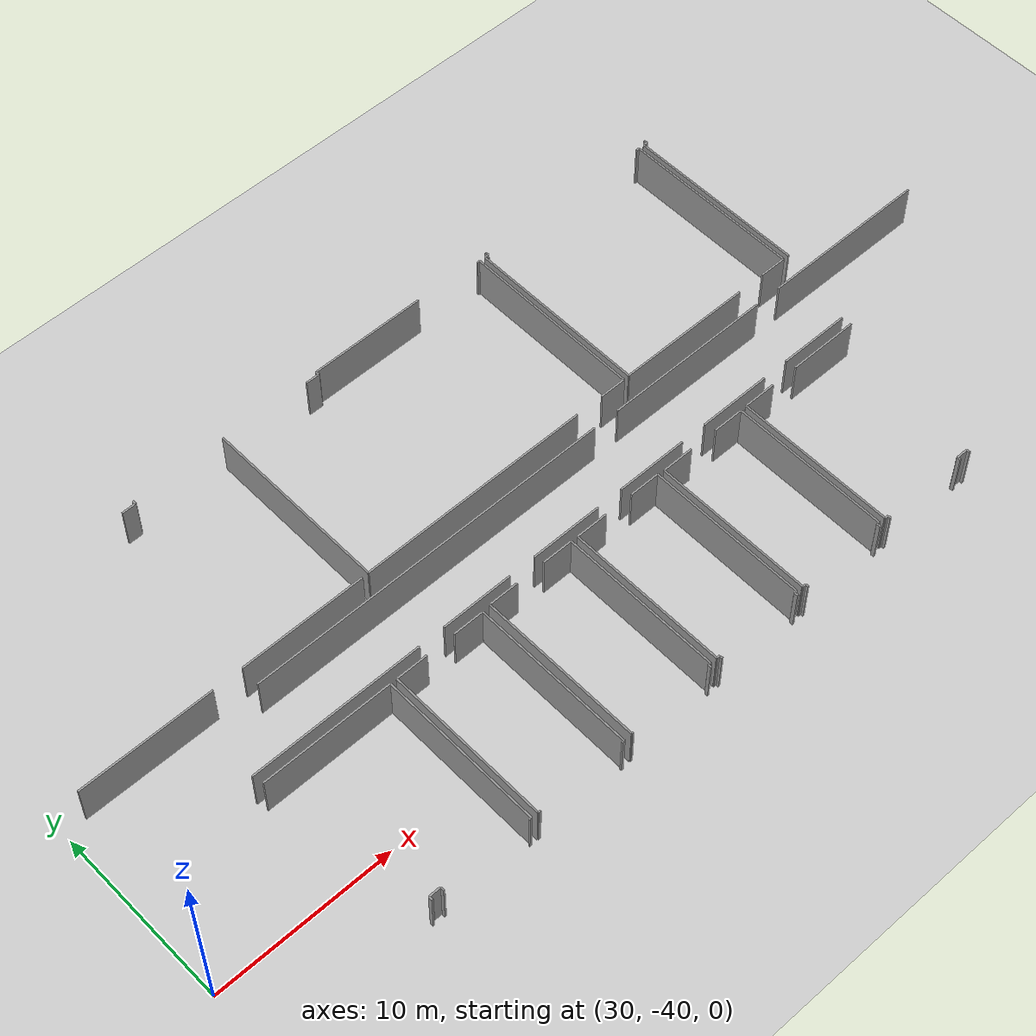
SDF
<sdf version="1.6">
 <world name="default">
  <model name="ground_plane">
   <static>1</static>
   <link name="link">
    <collision name="collision">
     <geometry><plane><normal>0 0 1</normal><size>100 100</size></plane></geometry>
     <surface><friction><ode><mu>100</mu><mu2>50</mu2></ode></friction></surface>
    </collision>
    <visual name="visual">
     <cast_shadows>0</cast_shadows>
     <geometry><plane><normal>0 0 1</normal><size>100 100</size></plane></geometry>
     <material>
      <script><uri>file://media/materials/scripts/gazebo.material</uri><name>Gazebo/Grey</name></script>
     </material>
    </visual>
   </link>
  </model>
  <model name="50015847">
   <static>1</static>
   <link name="Wall_1422">
    <collision name="Wall_1422_Collision">
     <geometry><box><size>7.35801088117 0.1 2.5</size></box></geometry>
     <pose>3.67900544059 0 1.25 0 0 0</pose>
    </collision>
    <visual name="Wall_1422_Visual">
     <pose>3.67900544059 0 1.25 0 0 0</pose>
     <geometry><box><size>7.35801088117 0.1 2.5</size></box></geometry>
     <material>
      <script><uri>file://media/materials/scripts/gazebo.material</uri><name>Gazebo/Grey</name></script>
      <ambient>1 1 1 1</ambient>
     </material>
    </visual>
    <pose>169.679920679 -78.6454466873 0 0 0 0.0</pose>
   </link>
   <link name="Wall_1423">
    <collision name="Wall_1423_Collision">
     <geometry><box><size>9.2019626786 0.1 2.5</size></box></geometry>
     <pose>4.6009813393 0 1.25 0 0 0</pose>
    </collision>
    <visual name="Wall_1423_Visual">
     <pose>4.6009813393 0 1.25 0 0 0</pose>
     <geometry><box><size>9.2019626786 0.1 2.5</size></box></geometry>
     <material>
      <script><uri>file://media/materials/scripts/gazebo.material</uri><name>Gazebo/Grey</name></script>
      <ambient>1 1 1 1</ambient>
     </material>
    </visual>
    <pose>177.03793156 -78.6454466873 0 0 0 -1.57079632679</pose>
   </link>
   <link name="Wall_1424">
    <collision name="Wall_1424_Collision">
     <geometry><box><size>0.140336604464 0.1 2.5</size></box></geometry>
     <pose>0.0701683022321 0 1.25 0 0 0</pose>
    </collision>
    <visual name="Wall_1424_Visual">
     <pose>0.0701683022321 0 1.25 0 0 0</pose>
     <geometry><box><size>0.140336604464 0.1 2.5</size></box></geometry>
     <material>
      <script><uri>file://media/materials/scripts/gazebo.material</uri><name>Gazebo/Grey</name></script>
      <ambient>1 1 1 1</ambient>
     </material>
    </visual>
    <pose>177.03793156 -87.8474093659 0 0 0 3.14159265359</pose>
   </link>
   <link name="Wall_1425">
    <collision name="Wall_1425_Collision">
     <geometry><box><size>0.22372502161 0.1 2.5</size></box></geometry>
     <pose>0.111862510805 0 1.25 0 0 0</pose>
    </collision>
    <visual name="Wall_1425_Visual">
     <pose>0.111862510805 0 1.25 0 0 0</pose>
     <geometry><box><size>0.22372502161 0.1 2.5</size></box></geometry>
     <material>
      <script><uri>file://media/materials/scripts/gazebo.material</uri><name>Gazebo/Grey</name></script>
      <ambient>1 1 1 1</ambient>
     </material>
    </visual>
    <pose>171.973610617 -87.8474093659 0 0 0 1.57079632679</pose>
   </link>
   <link name="Wall_1426">
    <collision name="Wall_1426_Collision">
     <geometry><box><size>0.655921086083 0.1 2.5</size></box></geometry>
     <pose>0.327960543042 0 1.25 0 0 0</pose>
    </collision>
    <visual name="Wall_1426_Visual">
     <pose>0.327960543042 0 1.25 0 0 0</pose>
     <geometry><box><size>0.655921086083 0.1 2.5</size></box></geometry>
     <material>
      <script><uri>file://media/materials/scripts/gazebo.material</uri><name>Gazebo/Grey</name></script>
      <ambient>1 1 1 1</ambient>
     </material>
    </visual>
    <pose>171.973610617 -87.6236843443 0 0 0 3.14159265359</pose>
   </link>
   <link name="Wall_1427">
    <collision name="Wall_1427_Collision">
     <geometry><box><size>0.207454110947 0.1 2.5</size></box></geometry>
     <pose>0.103727055474 0 1.25 0 0 0</pose>
    </collision>
    <visual name="Wall_1427_Visual">
     <pose>0.103727055474 0 1.25 0 0 0</pose>
     <geometry><box><size>0.207454110947 0.1 2.5</size></box></geometry>
     <material>
      <script><uri>file://media/materials/scripts/gazebo.material</uri><name>Gazebo/Grey</name></script>
      <ambient>1 1 1 1</ambient>
     </material>
    </visual>
    <pose>171.317689531 -87.6236843443 0 0 0 -1.57079632679</pose>
   </link>
   <link name="Wall_1431">
    <collision name="Wall_1431_Collision">
     <geometry><box><size>9.18848833071 0.1 2.5</size></box></geometry>
     <pose>4.59424416535 0 1.25 0 0 0</pose>
    </collision>
    <visual name="Wall_1431_Visual">
     <pose>4.59424416535 0 1.25 0 0 0</pose>
     <geometry><box><size>9.18848833071 0.1 2.5</size></box></geometry>
     <material>
      <script><uri>file://media/materials/scripts/gazebo.material</uri><name>Gazebo/Grey</name></script>
      <ambient>1 1 1 1</ambient>
     </material>
    </visual>
    <pose>177.416230233 -87.8420704734 0 0 0 1.57079632679</pose>
   </link>
   <link name="Wall_1432">
    <collision name="Wall_1432_Collision">
     <geometry><box><size>1.80022372502 0.1 2.5</size></box></geometry>
     <pose>0.900111862511 0 1.25 0 0 0</pose>
    </collision>
    <visual name="Wall_1432_Visual">
     <pose>0.900111862511 0 1.25 0 0 0</pose>
     <geometry><box><size>1.80022372502 0.1 2.5</size></box></geometry>
     <material>
      <script><uri>file://media/materials/scripts/gazebo.material</uri><name>Gazebo/Grey</name></script>
      <ambient>1 1 1 1</ambient>
     </material>
    </visual>
    <pose>177.416230233 -78.6535821427 0 0 0 0.0</pose>
   </link>
   <link name="Wall_1433">
    <collision name="Wall_1433_Collision">
     <geometry><box><size>1.75141099303 0.1 2.5</size></box></geometry>
     <pose>0.875705496517 0 1.25 0 0 0</pose>
    </collision>
    <visual name="Wall_1433_Visual">
     <pose>0.875705496517 0 1.25 0 0 0</pose>
     <geometry><box><size>1.75141099303 0.1 2.5</size></box></geometry>
     <material>
      <script><uri>file://media/materials/scripts/gazebo.material</uri><name>Gazebo/Grey</name></script>
      <ambient>1 1 1 1</ambient>
     </material>
    </visual>
    <pose>180.864900595 -78.6535821427 0 0 0 0.0</pose>
   </link>
   <link name="Wall_1434">
    <collision name="Wall_1434_Collision">
     <geometry><box><size>9.19891188285 0.1 2.5</size></box></geometry>
     <pose>4.59945594142 0 1.25 0 0 0</pose>
    </collision>
    <visual name="Wall_1434_Visual">
     <pose>4.59945594142 0 1.25 0 0 0</pose>
     <geometry><box><size>9.19891188285 0.1 2.5</size></box></geometry>
     <material>
      <script><uri>file://media/materials/scripts/gazebo.material</uri><name>Gazebo/Grey</name></script>
      <ambient>1 1 1 1</ambient>
     </material>
    </visual>
    <pose>182.616311588 -78.6535821427 0 0 0 -1.57079632679</pose>
   </link>
   <link name="Wall_1435">
    <collision name="Wall_1435_Collision">
     <geometry><box><size>0.140845070423 0.1 2.5</size></box></geometry>
     <pose>0.0704225352113 0 1.25 0 0 0</pose>
    </collision>
    <visual name="Wall_1435_Visual">
     <pose>0.0704225352113 0 1.25 0 0 0</pose>
     <geometry><box><size>0.140845070423 0.1 2.5</size></box></geometry>
     <material>
      <script><uri>file://media/materials/scripts/gazebo.material</uri><name>Gazebo/Grey</name></script>
      <ambient>1 1 1 1</ambient>
     </material>
    </visual>
    <pose>182.616311588 -87.8524940255 0 0 0 3.14159265359</pose>
   </link>
   <link name="Wall_1436">
    <collision name="Wall_1436_Collision">
     <geometry><box><size>0.146301526098 0.1 2.5</size></box></geometry>
     <pose>0.0731507630488 0 1.25 0 0 0</pose>
    </collision>
    <visual name="Wall_1436_Visual">
     <pose>0.0731507630488 0 1.25 0 0 0</pose>
     <geometry><box><size>0.146301526098 0.1 2.5</size></box></geometry>
     <material>
      <script><uri>file://media/materials/scripts/gazebo.material</uri><name>Gazebo/Grey</name></script>
      <ambient>1 1 1 1</ambient>
     </material>
    </visual>
    <pose>177.562159963 -87.8524940255 0 0 0 3.0702851888</pose>
   </link>
   <link name="Wall_1437">
    <collision name="Wall_1437_Collision">
     <geometry><box><size>9.23679259674 0.1 2.5</size></box></geometry>
     <pose>4.61839629837 0 1.25 0 0 0</pose>
    </collision>
    <visual name="Wall_1437_Visual">
     <pose>4.61839629837 0 1.25 0 0 0</pose>
     <geometry><box><size>9.23679259674 0.1 2.5</size></box></geometry>
     <material>
      <script><uri>file://media/materials/scripts/gazebo.material</uri><name>Gazebo/Grey</name></script>
      <ambient>1 1 1 1</ambient>
     </material>
    </visual>
    <pose>183.107743937 -87.8212233691 0 0 0 1.57079632679</pose>
   </link>
   <link name="Wall_1438">
    <collision name="Wall_1438_Collision">
     <geometry><box><size>1.71429297809 0.1 2.5</size></box></geometry>
     <pose>0.857146489043 0 1.25 0 0 0</pose>
    </collision>
    <visual name="Wall_1438_Visual">
     <pose>0.857146489043 0 1.25 0 0 0</pose>
     <geometry><box><size>1.71429297809 0.1 2.5</size></box></geometry>
     <material>
      <script><uri>file://media/materials/scripts/gazebo.material</uri><name>Gazebo/Grey</name></script>
      <ambient>1 1 1 1</ambient>
     </material>
    </visual>
    <pose>183.107743937 -78.5844307724 0 0 0 0.0</pose>
   </link>
   <link name="Wall_1439">
    <collision name="Wall_1439_Collision">
     <geometry><box><size>1.75344485687 0.1 2.5</size></box></geometry>
     <pose>0.876722428433 0 1.25 0 0 0</pose>
    </collision>
    <visual name="Wall_1439_Visual">
     <pose>0.876722428433 0 1.25 0 0 0</pose>
     <geometry><box><size>1.75344485687 0.1 2.5</size></box></geometry>
     <material>
      <script><uri>file://media/materials/scripts/gazebo.material</uri><name>Gazebo/Grey</name></script>
      <ambient>1 1 1 1</ambient>
     </material>
    </visual>
    <pose>186.485991763 -78.5844307724 0 0 0 0.0</pose>
   </link>
   <link name="Wall_1440">
    <collision name="Wall_1440_Collision">
     <geometry><box><size>9.05552448264 0.1 2.5</size></box></geometry>
     <pose>4.52776224132 0 1.25 0 0 0</pose>
    </collision>
    <visual name="Wall_1440_Visual">
     <pose>4.52776224132 0 1.25 0 0 0</pose>
     <geometry><box><size>9.05552448264 0.1 2.5</size></box></geometry>
     <material>
      <script><uri>file://media/materials/scripts/gazebo.material</uri><name>Gazebo/Grey</name></script>
      <ambient>1 1 1 1</ambient>
     </material>
    </visual>
    <pose>188.23943662 -78.5844307724 0 0 0 -1.57079632679</pose>
   </link>
   <link name="Wall_1441">
    <collision name="Wall_1441_Collision">
     <geometry><box><size>0.134489245945 0.1 2.5</size></box></geometry>
     <pose>0.0672446229725 0 1.25 0 0 0</pose>
    </collision>
    <visual name="Wall_1441_Visual">
     <pose>0.0672446229725 0 1.25 0 0 0</pose>
     <geometry><box><size>0.134489245945 0.1 2.5</size></box></geometry>
     <material>
      <script><uri>file://media/materials/scripts/gazebo.material</uri><name>Gazebo/Grey</name></script>
      <ambient>1 1 1 1</ambient>
     </material>
    </visual>
    <pose>188.23943662 -87.639955255 0 0 0 3.14159265359</pose>
   </link>
   <link name="Wall_1442">
    <collision name="Wall_1442_Collision">
     <geometry><box><size>0.174912289622 0.1 2.5</size></box></geometry>
     <pose>0.0874561448111 0 1.25 0 0 0</pose>
    </collision>
    <visual name="Wall_1442_Visual">
     <pose>0.0874561448111 0 1.25 0 0 0</pose>
     <geometry><box><size>0.174912289622 0.1 2.5</size></box></geometry>
     <material>
      <script><uri>file://media/materials/scripts/gazebo.material</uri><name>Gazebo/Grey</name></script>
      <ambient>1 1 1 1</ambient>
     </material>
    </visual>
    <pose>188.104947374 -87.639955255 0 0 0 -1.57079632679</pose>
   </link>
   <link name="Wall_1443">
    <collision name="Wall_1443_Collision">
     <geometry><box><size>0.109250984094 0.1 2.5</size></box></geometry>
     <pose>0.054625492047 0 1.25 0 0 0</pose>
    </collision>
    <visual name="Wall_1443_Visual">
     <pose>0.054625492047 0 1.25 0 0 0</pose>
     <geometry><box><size>0.109250984094 0.1 2.5</size></box></geometry>
     <material>
      <script><uri>file://media/materials/scripts/gazebo.material</uri><name>Gazebo/Grey</name></script>
      <ambient>1 1 1 1</ambient>
     </material>
    </visual>
    <pose>183.216809885 -87.8148675446 0 0 0 -3.08338342825</pose>
   </link>
   <link name="Wall_1444">
    <collision name="Wall_1444_Collision">
     <geometry><box><size>9.0255249911 0.1 2.5</size></box></geometry>
     <pose>4.51276249555 0 1.25 0 0 0</pose>
    </collision>
    <visual name="Wall_1444_Visual">
     <pose>4.51276249555 0 1.25 0 0 0</pose>
     <geometry><box><size>9.0255249911 0.1 2.5</size></box></geometry>
     <material>
      <script><uri>file://media/materials/scripts/gazebo.material</uri><name>Gazebo/Grey</name></script>
      <ambient>1 1 1 1</ambient>
     </material>
    </visual>
    <pose>188.631718106 -87.6328367316 0 0 0 1.57079632679</pose>
   </link>
   <link name="Wall_1445">
    <collision name="Wall_1445_Collision">
     <geometry><box><size>1.8345451772 0.1 2.5</size></box></geometry>
     <pose>0.9172725886 0 1.25 0 0 0</pose>
    </collision>
    <visual name="Wall_1445_Visual">
     <pose>0.9172725886 0 1.25 0 0 0</pose>
     <geometry><box><size>1.8345451772 0.1 2.5</size></box></geometry>
     <material>
      <script><uri>file://media/materials/scripts/gazebo.material</uri><name>Gazebo/Grey</name></script>
      <ambient>1 1 1 1</ambient>
     </material>
    </visual>
    <pose>188.631718106 -78.6073117405 0 0 0 0.0</pose>
   </link>
   <link name="Wall_1446">
    <collision name="Wall_1446_Collision">
     <geometry><box><size>1.74861443026 0.1 2.5</size></box></geometry>
     <pose>0.874307215132 0 1.25 0 0 0</pose>
    </collision>
    <visual name="Wall_1446_Visual">
     <pose>0.874307215132 0 1.25 0 0 0</pose>
     <geometry><box><size>1.74861443026 0.1 2.5</size></box></geometry>
     <material>
      <script><uri>file://media/materials/scripts/gazebo.material</uri><name>Gazebo/Grey</name></script>
      <ambient>1 1 1 1</ambient>
     </material>
    </visual>
    <pose>192.115981085 -78.6073117405 0 0 0 0.0</pose>
   </link>
   <link name="Wall_1447">
    <collision name="Wall_1447_Collision">
     <geometry><box><size>9.01713530279 0.1 2.5</size></box></geometry>
     <pose>4.5085676514 0 1.25 0 0 0</pose>
    </collision>
    <visual name="Wall_1447_Visual">
     <pose>4.5085676514 0 1.25 0 0 0</pose>
     <geometry><box><size>9.01713530279 0.1 2.5</size></box></geometry>
     <material>
      <script><uri>file://media/materials/scripts/gazebo.material</uri><name>Gazebo/Grey</name></script>
      <ambient>1 1 1 1</ambient>
     </material>
    </visual>
    <pose>193.864595515 -78.6073117405 0 0 0 -1.57079632679</pose>
   </link>
   <link name="Wall_1448">
    <collision name="Wall_1448_Collision">
     <geometry><box><size>0.136777342757 0.1 2.5</size></box></geometry>
     <pose>0.0683886713784 0 1.25 0 0 0</pose>
    </collision>
    <visual name="Wall_1448_Visual">
     <pose>0.0683886713784 0 1.25 0 0 0</pose>
     <geometry><box><size>0.136777342757 0.1 2.5</size></box></geometry>
     <material>
      <script><uri>file://media/materials/scripts/gazebo.material</uri><name>Gazebo/Grey</name></script>
      <ambient>1 1 1 1</ambient>
     </material>
    </visual>
    <pose>193.864595515 -87.6244470433 0 0 0 3.14159265359</pose>
   </link>
   <link name="Wall_1449">
    <collision name="Wall_1449_Collision">
     <geometry><box><size>0.204403315198 0.1 2.5</size></box></geometry>
     <pose>0.102201657599 0 1.25 0 0 0</pose>
    </collision>
    <visual name="Wall_1449_Visual">
     <pose>0.102201657599 0 1.25 0 0 0</pose>
     <geometry><box><size>0.204403315198 0.1 2.5</size></box></geometry>
     <material>
      <script><uri>file://media/materials/scripts/gazebo.material</uri><name>Gazebo/Grey</name></script>
      <ambient>1 1 1 1</ambient>
     </material>
    </visual>
    <pose>193.727818173 -87.6244470433 0 0 0 -1.57079632679</pose>
   </link>
   <link name="Wall_1450">
    <collision name="Wall_1450_Collision">
     <geometry><box><size>0.17542075558 0.1 2.5</size></box></geometry>
     <pose>0.0877103777902 0 1.25 0 0 0</pose>
    </collision>
    <visual name="Wall_1450_Visual">
     <pose>0.0877103777902 0 1.25 0 0 0</pose>
     <geometry><box><size>0.17542075558 0.1 2.5</size></box></geometry>
     <material>
      <script><uri>file://media/materials/scripts/gazebo.material</uri><name>Gazebo/Grey</name></script>
      <ambient>1 1 1 1</ambient>
     </material>
    </visual>
    <pose>188.806630396 -87.8288503585 0 0 0 1.57079632679</pose>
   </link>
   <link name="Wall_1451">
    <collision name="Wall_1451_Collision">
     <geometry><box><size>0.176120343543 0.1 2.5</size></box></geometry>
     <pose>0.0880601717713 0 1.25 0 0 0</pose>
    </collision>
    <visual name="Wall_1451_Visual">
     <pose>0.0880601717713 0 1.25 0 0 0</pose>
     <geometry><box><size>0.176120343543 0.1 2.5</size></box></geometry>
     <material>
      <script><uri>file://media/materials/scripts/gazebo.material</uri><name>Gazebo/Grey</name></script>
      <ambient>1 1 1 1</ambient>
     </material>
    </visual>
    <pose>188.806630396 -87.6534296029 0 0 0 3.02439957777</pose>
   </link>
   <link name="Wall_1452">
    <collision name="Wall_1452_Collision">
     <geometry><box><size>8.96857680378 0.1 2.5</size></box></geometry>
     <pose>4.48428840189 0 1.25 0 0 0</pose>
    </collision>
    <visual name="Wall_1452_Visual">
     <pose>4.48428840189 0 1.25 0 0 0</pose>
     <geometry><box><size>8.96857680378 0.1 2.5</size></box></geometry>
     <material>
      <script><uri>file://media/materials/scripts/gazebo.material</uri><name>Gazebo/Grey</name></script>
      <ambient>1 1 1 1</ambient>
     </material>
    </visual>
    <pose>194.244419586 -87.6333451975 0 0 0 1.57079632679</pose>
   </link>
   <link name="Wall_1453">
    <collision name="Wall_1453_Collision">
     <geometry><box><size>1.8065795495 0.1 2.5</size></box></geometry>
     <pose>0.90328977475 0 1.25 0 0 0</pose>
    </collision>
    <visual name="Wall_1453_Visual">
     <pose>0.90328977475 0 1.25 0 0 0</pose>
     <geometry><box><size>1.8065795495 0.1 2.5</size></box></geometry>
     <material>
      <script><uri>file://media/materials/scripts/gazebo.material</uri><name>Gazebo/Grey</name></script>
      <ambient>1 1 1 1</ambient>
     </material>
    </visual>
    <pose>194.244419586 -78.6647683938 0 0 0 0.0</pose>
   </link>
   <link name="Wall_1454">
    <collision name="Wall_1454_Collision">
     <geometry><box><size>1.75624141964 0.1 2.5</size></box></geometry>
     <pose>0.878120709818 0 1.25 0 0 0</pose>
    </collision>
    <visual name="Wall_1454_Visual">
     <pose>0.878120709818 0 1.25 0 0 0</pose>
     <geometry><box><size>1.75624141964 0.1 2.5</size></box></geometry>
     <material>
      <script><uri>file://media/materials/scripts/gazebo.material</uri><name>Gazebo/Grey</name></script>
      <ambient>1 1 1 1</ambient>
     </material>
    </visual>
    <pose>197.698683073 -78.6647683938 0 0 0 0.0</pose>
   </link>
   <link name="Wall_1455">
    <collision name="Wall_1455_Collision">
     <geometry><box><size>8.95001779631 0.1 2.5</size></box></geometry>
     <pose>4.47500889815 0 1.25 0 0 0</pose>
    </collision>
    <visual name="Wall_1455_Visual">
     <pose>4.47500889815 0 1.25 0 0 0</pose>
     <geometry><box><size>8.95001779631 0.1 2.5</size></box></geometry>
     <material>
      <script><uri>file://media/materials/scripts/gazebo.material</uri><name>Gazebo/Grey</name></script>
      <ambient>1 1 1 1</ambient>
     </material>
    </visual>
    <pose>199.454924493 -78.6647683938 0 0 0 -1.57079632679</pose>
   </link>
   <link name="Wall_1456">
    <collision name="Wall_1456_Collision">
     <geometry><box><size>0.141353536381 0.1 2.5</size></box></geometry>
     <pose>0.0706767681904 0 1.25 0 0 0</pose>
    </collision>
    <visual name="Wall_1456_Visual">
     <pose>0.0706767681904 0 1.25 0 0 0</pose>
     <geometry><box><size>0.141353536381 0.1 2.5</size></box></geometry>
     <material>
      <script><uri>file://media/materials/scripts/gazebo.material</uri><name>Gazebo/Grey</name></script>
      <ambient>1 1 1 1</ambient>
     </material>
    </visual>
    <pose>199.454924493 -87.6147861901 0 0 0 3.14159265359</pose>
   </link>
   <link name="Wall_1457">
    <collision name="Wall_1457_Collision">
     <geometry><box><size>0.207454110947 0.1 2.5</size></box></geometry>
     <pose>0.103727055474 0 1.25 0 0 0</pose>
    </collision>
    <visual name="Wall_1457_Visual">
     <pose>0.103727055474 0 1.25 0 0 0</pose>
     <geometry><box><size>0.207454110947 0.1 2.5</size></box></geometry>
     <material>
      <script><uri>file://media/materials/scripts/gazebo.material</uri><name>Gazebo/Grey</name></script>
      <ambient>1 1 1 1</ambient>
     </material>
    </visual>
    <pose>199.313570956 -87.6147861901 0 0 0 -1.57079632679</pose>
   </link>
   <link name="Wall_1458">
    <collision name="Wall_1458_Collision">
     <geometry><box><size>0.171353027915 0.1 2.5</size></box></geometry>
     <pose>0.0856765139574 0 1.25 0 0 0</pose>
    </collision>
    <visual name="Wall_1458_Visual">
     <pose>0.0856765139574 0 1.25 0 0 0</pose>
     <geometry><box><size>0.171353027915 0.1 2.5</size></box></geometry>
     <material>
      <script><uri>file://media/materials/scripts/gazebo.material</uri><name>Gazebo/Grey</name></script>
      <ambient>1 1 1 1</ambient>
     </material>
    </visual>
    <pose>194.427467331 -87.822240301 0 0 0 1.57079632679</pose>
   </link>
   <link name="Wall_1459">
    <collision name="Wall_1459_Collision">
     <geometry><box><size>0.196776325825 0.1 2.5</size></box></geometry>
     <pose>0.0983881629125 0 1.25 0 0 0</pose>
    </collision>
    <visual name="Wall_1459_Visual">
     <pose>0.0983881629125 0 1.25 0 0 0</pose>
     <geometry><box><size>0.196776325825 0.1 2.5</size></box></geometry>
     <material>
      <script><uri>file://media/materials/scripts/gazebo.material</uri><name>Gazebo/Grey</name></script>
      <ambient>1 1 1 1</ambient>
     </material>
    </visual>
    <pose>194.427467331 -87.6508872731 0 0 0 3.14159265359</pose>
   </link>
   <link name="Wall_1460">
    <collision name="Wall_1460_Collision">
     <geometry><box><size>0.022275510042 0.1 2.5</size></box></geometry>
     <pose>0.011137755021 0 1.25 0 0 0</pose>
    </collision>
    <visual name="Wall_1460_Visual">
     <pose>0.011137755021 0 1.25 0 0 0</pose>
     <geometry><box><size>0.022275510042 0.1 2.5</size></box></geometry>
     <material>
      <script><uri>file://media/materials/scripts/gazebo.material</uri><name>Gazebo/Grey</name></script>
      <ambient>1 1 1 1</ambient>
     </material>
    </visual>
    <pose>194.230691005 -87.6508872731 0 0 0 0.906750163967</pose>
   </link>
   <link name="Wall_1461">
    <collision name="Wall_1461_Collision">
     <geometry><box><size>8.97671225911 0.1 2.5</size></box></geometry>
     <pose>4.48835612956 0 1.25 0 0 0</pose>
    </collision>
    <visual name="Wall_1461_Visual">
     <pose>4.48835612956 0 1.25 0 0 0</pose>
     <geometry><box><size>8.97671225911 0.1 2.5</size></box></geometry>
     <material>
      <script><uri>file://media/materials/scripts/gazebo.material</uri><name>Gazebo/Grey</name></script>
      <ambient>1 1 1 1</ambient>
     </material>
    </visual>
    <pose>199.835002797 -87.6221589465 0 0 0 1.57079632679</pose>
   </link>
   <link name="Wall_1462">
    <collision name="Wall_1462_Collision">
     <geometry><box><size>1.87090049321 0.1 2.5</size></box></geometry>
     <pose>0.935450246606 0 1.25 0 0 0</pose>
    </collision>
    <visual name="Wall_1462_Visual">
     <pose>0.935450246606 0 1.25 0 0 0</pose>
     <geometry><box><size>1.87090049321 0.1 2.5</size></box></geometry>
     <material>
      <script><uri>file://media/materials/scripts/gazebo.material</uri><name>Gazebo/Grey</name></script>
      <ambient>1 1 1 1</ambient>
     </material>
    </visual>
    <pose>199.835002797 -78.6454466873 0 0 0 0.0</pose>
   </link>
   <link name="Wall_1463">
    <collision name="Wall_1463_Collision">
     <geometry><box><size>4.00137285809 0.1 2.5</size></box></geometry>
     <pose>2.00068642904 0 1.25 0 0 0</pose>
    </collision>
    <visual name="Wall_1463_Visual">
     <pose>2.00068642904 0 1.25 0 0 0</pose>
     <geometry><box><size>4.00137285809 0.1 2.5</size></box></geometry>
     <material>
      <script><uri>file://media/materials/scripts/gazebo.material</uri><name>Gazebo/Grey</name></script>
      <ambient>1 1 1 1</ambient>
     </material>
    </visual>
    <pose>203.277063101 -78.6454466873 0 0 0 0.0</pose>
   </link>
   <link name="Wall_1468">
    <collision name="Wall_1468_Collision">
     <geometry><box><size>0.204403315198 0.1 2.5</size></box></geometry>
     <pose>0.102201657599 0 1.25 0 0 0</pose>
    </collision>
    <visual name="Wall_1468_Visual">
     <pose>0.102201657599 0 1.25 0 0 0</pose>
     <geometry><box><size>0.204403315198 0.1 2.5</size></box></geometry>
     <material>
      <script><uri>file://media/materials/scripts/gazebo.material</uri><name>Gazebo/Grey</name></script>
      <ambient>1 1 1 1</ambient>
     </material>
    </visual>
    <pose>205.606854121 -87.8369858138 0 0 0 1.57079632679</pose>
   </link>
   <link name="Wall_1469">
    <collision name="Wall_1469_Collision">
     <geometry><box><size>0.668632735038 0.1 2.5</size></box></geometry>
     <pose>0.334316367519 0 1.25 0 0 0</pose>
    </collision>
    <visual name="Wall_1469_Visual">
     <pose>0.334316367519 0 1.25 0 0 0</pose>
     <geometry><box><size>0.668632735038 0.1 2.5</size></box></geometry>
     <material>
      <script><uri>file://media/materials/scripts/gazebo.material</uri><name>Gazebo/Grey</name></script>
      <ambient>1 1 1 1</ambient>
     </material>
    </visual>
    <pose>205.606854121 -87.6325824986 0 0 0 3.14159265359</pose>
   </link>
   <link name="Wall_1470">
    <collision name="Wall_1470_Collision">
     <geometry><box><size>0.193725530076 0.1 2.5</size></box></geometry>
     <pose>0.0968627650379 0 1.25 0 0 0</pose>
    </collision>
    <visual name="Wall_1470_Visual">
     <pose>0.0968627650379 0 1.25 0 0 0</pose>
     <geometry><box><size>0.193725530076 0.1 2.5</size></box></geometry>
     <material>
      <script><uri>file://media/materials/scripts/gazebo.material</uri><name>Gazebo/Grey</name></script>
      <ambient>1 1 1 1</ambient>
     </material>
    </visual>
    <pose>204.938221386 -87.6325824986 0 0 0 -1.57079632679</pose>
   </link>
   <link name="Wall_1471">
    <collision name="Wall_1471_Collision">
     <geometry><box><size>0.180759648142 0.1 2.5</size></box></geometry>
     <pose>0.0903798240708 0 1.25 0 0 0</pose>
    </collision>
    <visual name="Wall_1471_Visual">
     <pose>0.0903798240708 0 1.25 0 0 0</pose>
     <geometry><box><size>0.180759648142 0.1 2.5</size></box></geometry>
     <material>
      <script><uri>file://media/materials/scripts/gazebo.material</uri><name>Gazebo/Grey</name></script>
      <ambient>1 1 1 1</ambient>
     </material>
    </visual>
    <pose>200.025169065 -87.8263080287 0 0 0 1.57079632679</pose>
   </link>
   <link name="Wall_1472">
    <collision name="Wall_1472_Collision">
     <geometry><box><size>0.192708598159 0.1 2.5</size></box></geometry>
     <pose>0.0963542990797 0 1.25 0 0 0</pose>
    </collision>
    <visual name="Wall_1472_Visual">
     <pose>0.0963542990797 0 1.25 0 0 0</pose>
     <geometry><box><size>0.192708598159 0.1 2.5</size></box></geometry>
     <material>
      <script><uri>file://media/materials/scripts/gazebo.material</uri><name>Gazebo/Grey</name></script>
      <ambient>1 1 1 1</ambient>
     </material>
    </visual>
    <pose>200.025169065 -87.6455483805 0 0 0 3.14159265359</pose>
   </link>
   <link name="Wall_1473">
    <collision name="Wall_1473_Collision">
     <geometry><box><size>0.0235271984568 0.1 2.5</size></box></geometry>
     <pose>0.0117635992284 0 1.25 0 0 0</pose>
    </collision>
    <visual name="Wall_1473_Visual">
     <pose>0.0117635992284 0 1.25 0 0 0</pose>
     <geometry><box><size>0.0235271984568 0.1 2.5</size></box></geometry>
     <material>
      <script><uri>file://media/materials/scripts/gazebo.material</uri><name>Gazebo/Grey</name></script>
      <ambient>1 1 1 1</ambient>
     </material>
    </visual>
    <pose>199.832460467 -87.6455483805 0 0 0 1.46252573593</pose>
   </link>
   <link name="Wall_1541">
    <collision name="Wall_1541_Collision">
     <geometry><box><size>10.3536380739 0.1 2.5</size></box></geometry>
     <pose>5.17681903697 0 1.25 0 0 0</pose>
    </collision>
    <visual name="Wall_1541_Visual">
     <pose>5.17681903697 0 1.25 0 0 0</pose>
     <geometry><box><size>10.3536380739 0.1 2.5</size></box></geometry>
     <material>
      <script><uri>file://media/materials/scripts/gazebo.material</uri><name>Gazebo/Grey</name></script>
      <ambient>1 1 1 1</ambient>
     </material>
    </visual>
    <pose>208.234097727 -73.491381502 0 0 0 1.57079632679</pose>
   </link>
   <link name="Wall_1542">
    <collision name="Wall_1542_Collision">
     <geometry><box><size>0.22931814715 0.1 2.5</size></box></geometry>
     <pose>0.114659073575 0 1.25 0 0 0</pose>
    </collision>
    <visual name="Wall_1542_Visual">
     <pose>0.114659073575 0 1.25 0 0 0</pose>
     <geometry><box><size>0.22931814715 0.1 2.5</size></box></geometry>
     <material>
      <script><uri>file://media/materials/scripts/gazebo.material</uri><name>Gazebo/Grey</name></script>
      <ambient>1 1 1 1</ambient>
     </material>
    </visual>
    <pose>208.234097727 -63.1377434281 0 0 0 0.0</pose>
   </link>
   <link name="Wall_1543">
    <collision name="Wall_1543_Collision">
     <geometry><box><size>0.219911526923 0.1 2.5</size></box></geometry>
     <pose>0.109955763462 0 1.25 0 0 0</pose>
    </collision>
    <visual name="Wall_1543_Visual">
     <pose>0.109955763462 0 1.25 0 0 0</pose>
     <geometry><box><size>0.219911526923 0.1 2.5</size></box></geometry>
     <material>
      <script><uri>file://media/materials/scripts/gazebo.material</uri><name>Gazebo/Grey</name></script>
      <ambient>1 1 1 1</ambient>
     </material>
    </visual>
    <pose>208.463415874 -63.1377434281 0 0 0 1.57079632679</pose>
   </link>
   <link name="Wall_1551">
    <collision name="Wall_1551_Collision">
     <geometry><box><size>10.5677022423 0.1 2.5</size></box></geometry>
     <pose>5.28385112117 0 1.25 0 0 0</pose>
    </collision>
    <visual name="Wall_1551_Visual">
     <pose>5.28385112117 0 1.25 0 0 0</pose>
     <geometry><box><size>10.5677022423 0.1 2.5</size></box></geometry>
     <material>
      <script><uri>file://media/materials/scripts/gazebo.material</uri><name>Gazebo/Grey</name></script>
      <ambient>1 1 1 1</ambient>
     </material>
    </visual>
    <pose>180.218131896 -73.4997711903 0 0 0 1.57079632679</pose>
   </link>
   <link name="Wall_1554">
    <collision name="Wall_1554_Collision">
     <geometry><box><size>0.789393400112 0.1 2.5</size></box></geometry>
     <pose>0.394696700056 0 1.25 0 0 0</pose>
    </collision>
    <visual name="Wall_1554_Visual">
     <pose>0.394696700056 0 1.25 0 0 0</pose>
     <geometry><box><size>0.789393400112 0.1 2.5</size></box></geometry>
     <material>
      <script><uri>file://media/materials/scripts/gazebo.material</uri><name>Gazebo/Grey</name></script>
      <ambient>1 1 1 1</ambient>
     </material>
    </visual>
    <pose>185.2628769 -63.1278283419 0 0 0 0.0</pose>
   </link>
   <link name="Wall_1555">
    <collision name="Wall_1555_Collision">
     <geometry><box><size>0.191183200285 0.1 2.5</size></box></geometry>
     <pose>0.0955916001424 0 1.25 0 0 0</pose>
    </collision>
    <visual name="Wall_1555_Visual">
     <pose>0.0955916001424 0 1.25 0 0 0</pose>
     <geometry><box><size>0.191183200285 0.1 2.5</size></box></geometry>
     <material>
      <script><uri>file://media/materials/scripts/gazebo.material</uri><name>Gazebo/Grey</name></script>
      <ambient>1 1 1 1</ambient>
     </material>
    </visual>
    <pose>186.052270301 -63.1278283419 0 0 0 1.57079632679</pose>
   </link>
   <link name="Wall_1556">
    <collision name="Wall_1556_Collision">
     <geometry><box><size>6.64615853969 0.1 2.5</size></box></geometry>
     <pose>3.32307926984 0 1.25 0 0 0</pose>
    </collision>
    <visual name="Wall_1556_Visual">
     <pose>3.32307926984 0 1.25 0 0 0</pose>
     <geometry><box><size>6.64615853969 0.1 2.5</size></box></geometry>
     <material>
      <script><uri>file://media/materials/scripts/gazebo.material</uri><name>Gazebo/Grey</name></script>
      <ambient>1 1 1 1</ambient>
     </material>
    </visual>
    <pose>186.052270301 -62.9366451416 0 0 0 0.0</pose>
   </link>
   <link name="Wall_1559">
    <collision name="Wall_1559_Collision">
     <geometry><box><size>0.172115726852 0.1 2.5</size></box></geometry>
     <pose>0.086057863426 0 1.25 0 0 0</pose>
    </collision>
    <visual name="Wall_1559_Visual">
     <pose>0.086057863426 0 1.25 0 0 0</pose>
     <geometry><box><size>0.172115726852 0.1 2.5</size></box></geometry>
     <material>
      <script><uri>file://media/materials/scripts/gazebo.material</uri><name>Gazebo/Grey</name></script>
      <ambient>1 1 1 1</ambient>
     </material>
    </visual>
    <pose>196.477856308 -63.1334214674 0 0 0 0.0</pose>
   </link>
   <link name="Wall_1560">
    <collision name="Wall_1560_Collision">
     <geometry><box><size>10.3498245792 0.1 2.5</size></box></geometry>
     <pose>5.17491228962 0 1.25 0 0 0</pose>
    </collision>
    <visual name="Wall_1560_Visual">
     <pose>5.17491228962 0 1.25 0 0 0</pose>
     <geometry><box><size>10.3498245792 0.1 2.5</size></box></geometry>
     <material>
      <script><uri>file://media/materials/scripts/gazebo.material</uri><name>Gazebo/Grey</name></script>
      <ambient>1 1 1 1</ambient>
     </material>
    </visual>
    <pose>196.649972034 -63.1334214674 0 0 0 -1.57079632679</pose>
   </link>
   <link name="Wall_1561">
    <collision name="Wall_1561_Collision">
     <geometry><box><size>1.4951441501 0.1 2.5</size></box></geometry>
     <pose>0.74757207505 0 1.25 0 0 0</pose>
    </collision>
    <visual name="Wall_1561_Visual">
     <pose>0.74757207505 0 1.25 0 0 0</pose>
     <geometry><box><size>1.4951441501 0.1 2.5</size></box></geometry>
     <material>
      <script><uri>file://media/materials/scripts/gazebo.material</uri><name>Gazebo/Grey</name></script>
      <ambient>1 1 1 1</ambient>
     </material>
    </visual>
    <pose>196.649972034 -73.4832460467 0 0 0 3.14159265359</pose>
   </link>
   <link name="Wall_1562">
    <collision name="Wall_1562_Collision">
     <geometry><box><size>13.30224243 0.1 2.5</size></box></geometry>
     <pose>6.651121215 0 1.25 0 0 0</pose>
    </collision>
    <visual name="Wall_1562_Visual">
     <pose>6.651121215 0 1.25 0 0 0</pose>
     <geometry><box><size>13.30224243 0.1 2.5</size></box></geometry>
     <material>
      <script><uri>file://media/materials/scripts/gazebo.material</uri><name>Gazebo/Grey</name></script>
      <ambient>1 1 1 1</ambient>
     </material>
    </visual>
    <pose>193.520364062 -73.4832460467 0 0 0 -3.14035037072</pose>
   </link>
   <link name="Wall_1568">
    <collision name="Wall_1568_Collision">
     <geometry><box><size>0.798037321401 0.1 2.5</size></box></geometry>
     <pose>0.399018660701 0 1.25 0 0 0</pose>
    </collision>
    <visual name="Wall_1568_Visual">
     <pose>0.399018660701 0 1.25 0 0 0</pose>
     <geometry><box><size>0.798037321401 0.1 2.5</size></box></geometry>
     <material>
      <script><uri>file://media/materials/scripts/gazebo.material</uri><name>Gazebo/Grey</name></script>
      <ambient>1 1 1 1</ambient>
     </material>
    </visual>
    <pose>174.006965984 -63.1313876036 0 0 0 0.0</pose>
   </link>
   <link name="Wall_1569">
    <collision name="Wall_1569_Collision">
     <geometry><box><size>0.213555702446 0.1 2.5</size></box></geometry>
     <pose>0.106777851223 0 1.25 0 0 0</pose>
    </collision>
    <visual name="Wall_1569_Visual">
     <pose>0.106777851223 0 1.25 0 0 0</pose>
     <geometry><box><size>0.213555702446 0.1 2.5</size></box></geometry>
     <material>
      <script><uri>file://media/materials/scripts/gazebo.material</uri><name>Gazebo/Grey</name></script>
      <ambient>1 1 1 1</ambient>
     </material>
    </visual>
    <pose>174.805003305 -63.1313876036 0 0 0 1.57079632679</pose>
   </link>
   <link name="Wall_1572">
    <collision name="Wall_1572_Collision">
     <geometry><box><size>7.12004881273 0.1 2.5</size></box></geometry>
     <pose>3.56002440637 0 1.25 0 0 0</pose>
    </collision>
    <visual name="Wall_1572_Visual">
     <pose>3.56002440637 0 1.25 0 0 0</pose>
     <geometry><box><size>7.12004881273 0.1 2.5</size></box></geometry>
     <material>
      <script><uri>file://media/materials/scripts/gazebo.material</uri><name>Gazebo/Grey</name></script>
      <ambient>1 1 1 1</ambient>
     </material>
    </visual>
    <pose>179.844155184 -73.5119743733 0 0 0 3.14159265359</pose>
   </link>
   <link name="Wall_1573">
    <collision name="Wall_1573_Collision">
     <geometry><box><size>7.50423536439 0.1 2.5</size></box></geometry>
     <pose>3.7521176822 0 1.25 0 0 0</pose>
    </collision>
    <visual name="Wall_1573_Visual">
     <pose>3.7521176822 0 1.25 0 0 0</pose>
     <geometry><box><size>7.50423536439 0.1 2.5</size></box></geometry>
     <material>
      <script><uri>file://media/materials/scripts/gazebo.material</uri><name>Gazebo/Grey</name></script>
      <ambient>1 1 1 1</ambient>
     </material>
    </visual>
    <pose>171.04286368 -73.5119743733 0 0 0 3.13830642359</pose>
   </link>
   <link name="Wall_1698">
    <collision name="Wall_1698_Collision">
     <geometry><box><size>20.8887984949 0.1 2.5</size></box></geometry>
     <pose>10.4443992475 0 1.25 0 0 0</pose>
    </collision>
    <visual name="Wall_1698_Visual">
     <pose>10.4443992475 0 1.25 0 0 0</pose>
     <geometry><box><size>20.8887984949 0.1 2.5</size></box></geometry>
     <material>
      <script><uri>file://media/materials/scripts/gazebo.material</uri><name>Gazebo/Grey</name></script>
      <ambient>1 1 1 1</ambient>
     </material>
    </visual>
    <pose>172.696649209 -74.6194132303 0 0 0 0.0</pose>
   </link>
   <link name="Wall_1699">
    <collision name="Wall_1699_Collision">
     <geometry><box><size>9.68627650379 0.1 2.5</size></box></geometry>
     <pose>4.84313825189 0 1.25 0 0 0</pose>
    </collision>
    <visual name="Wall_1699_Visual">
     <pose>4.84313825189 0 1.25 0 0 0</pose>
     <geometry><box><size>9.68627650379 0.1 2.5</size></box></geometry>
     <material>
      <script><uri>file://media/materials/scripts/gazebo.material</uri><name>Gazebo/Grey</name></script>
      <ambient>1 1 1 1</ambient>
     </material>
    </visual>
    <pose>195.097116998 -74.6194132303 0 0 0 0.0</pose>
   </link>
   <link name="Wall_1700">
    <collision name="Wall_1700_Collision">
     <geometry><box><size>9.64814155692 0.1 2.5</size></box></geometry>
     <pose>4.82407077846 0 1.25 0 0 0</pose>
    </collision>
    <visual name="Wall_1700_Visual">
     <pose>4.82407077846 0 1.25 0 0 0</pose>
     <geometry><box><size>9.64814155692 0.1 2.5</size></box></geometry>
     <material>
      <script><uri>file://media/materials/scripts/gazebo.material</uri><name>Gazebo/Grey</name></script>
      <ambient>1 1 1 1</ambient>
     </material>
    </visual>
    <pose>206.314130269 -74.6194132303 0 0 0 0.0</pose>
   </link>
   <link name="Wall_1709">
    <collision name="Wall_1709_Collision">
     <geometry><box><size>4.04433823156 0.1 2.5</size></box></geometry>
     <pose>2.02216911578 0 1.25 0 0 0</pose>
    </collision>
    <visual name="Wall_1709_Visual">
     <pose>2.02216911578 0 1.25 0 0 0</pose>
     <geometry><box><size>4.04433823156 0.1 2.5</size></box></geometry>
     <material>
      <script><uri>file://media/materials/scripts/gazebo.material</uri><name>Gazebo/Grey</name></script>
      <ambient>1 1 1 1</ambient>
     </material>
    </visual>
    <pose>207.250724564 -78.0716428535 0 0 0 3.14159265359</pose>
   </link>
   <link name="Wall_1710">
    <collision name="Wall_1710_Collision">
     <geometry><box><size>4.15670920832 0.1 2.5</size></box></geometry>
     <pose>2.07835460416 0 1.25 0 0 0</pose>
    </collision>
    <visual name="Wall_1710_Visual">
     <pose>2.07835460416 0 1.25 0 0 0</pose>
     <geometry><box><size>4.15670920832 0.1 2.5</size></box></geometry>
     <material>
      <script><uri>file://media/materials/scripts/gazebo.material</uri><name>Gazebo/Grey</name></script>
      <ambient>1 1 1 1</ambient>
     </material>
    </visual>
    <pose>201.711242182 -78.0716428535 0 0 0 3.14159265359</pose>
   </link>
   <link name="Wall_1711">
    <collision name="Wall_1711_Collision">
     <geometry><box><size>4.06594803478 0.1 2.5</size></box></geometry>
     <pose>2.03297401739 0 1.25 0 0 0</pose>
    </collision>
    <visual name="Wall_1711_Visual">
     <pose>2.03297401739 0 1.25 0 0 0</pose>
     <geometry><box><size>4.06594803478 0.1 2.5</size></box></geometry>
     <material>
      <script><uri>file://media/materials/scripts/gazebo.material</uri><name>Gazebo/Grey</name></script>
      <ambient>1 1 1 1</ambient>
     </material>
    </visual>
    <pose>196.045660243 -78.0716428535 0 0 0 3.14159265359</pose>
   </link>
   <link name="Wall_1712">
    <collision name="Wall_1712_Collision">
     <geometry><box><size>4.10967610718 0.1 2.5</size></box></geometry>
     <pose>2.05483805359 0 1.25 0 0 0</pose>
    </collision>
    <visual name="Wall_1712_Visual">
     <pose>2.05483805359 0 1.25 0 0 0</pose>
     <geometry><box><size>4.10967610718 0.1 2.5</size></box></geometry>
     <material>
      <script><uri>file://media/materials/scripts/gazebo.material</uri><name>Gazebo/Grey</name></script>
      <ambient>1 1 1 1</ambient>
     </material>
    </visual>
    <pose>190.484059592 -78.0716428535 0 0 0 3.14159265359</pose>
   </link>
   <link name="Wall_1713">
    <collision name="Wall_1713_Collision">
     <geometry><box><size>4.08476127523 0.1 2.5</size></box></geometry>
     <pose>2.04238063762 0 1.25 0 0 0</pose>
    </collision>
    <visual name="Wall_1713_Visual">
     <pose>2.04238063762 0 1.25 0 0 0</pose>
     <geometry><box><size>4.08476127523 0.1 2.5</size></box></geometry>
     <material>
      <script><uri>file://media/materials/scripts/gazebo.material</uri><name>Gazebo/Grey</name></script>
      <ambient>1 1 1 1</ambient>
     </material>
    </visual>
    <pose>184.84720598 -78.0716428535 0 0 0 3.14159265359</pose>
   </link>
   <link name="Wall_1714">
    <collision name="Wall_1714_Collision">
     <geometry><box><size>9.75644480602 0.1 2.5</size></box></geometry>
     <pose>4.87822240301 0 1.25 0 0 0</pose>
    </collision>
    <visual name="Wall_1714_Visual">
     <pose>4.87822240301 0 1.25 0 0 0</pose>
     <geometry><box><size>9.75644480602 0.1 2.5</size></box></geometry>
     <material>
      <script><uri>file://media/materials/scripts/gazebo.material</uri><name>Gazebo/Grey</name></script>
      <ambient>1 1 1 1</ambient>
     </material>
    </visual>
    <pose>179.283825698 -78.0716428535 0 0 0 3.14159265359</pose>
   </link>
   <link name="Wall_1726">
    <collision name="Wall_1726_Collision">
     <geometry><box><size>10.3175369909 0.1 2.5</size></box></geometry>
     <pose>5.15876849545 0 1.25 0 0 0</pose>
    </collision>
    <visual name="Wall_1726_Visual">
     <pose>5.15876849545 0 1.25 0 0 0</pose>
     <geometry><box><size>10.3175369909 0.1 2.5</size></box></geometry>
     <material>
      <script><uri>file://media/materials/scripts/gazebo.material</uri><name>Gazebo/Grey</name></script>
      <ambient>1 1 1 1</ambient>
     </material>
    </visual>
    <pose>197.005135506 -73.4613820105 0 0 0 1.57079632679</pose>
   </link>
   <link name="Wall_1727">
    <collision name="Wall_1727_Collision">
     <geometry><box><size>0.241012864189 0.1 2.5</size></box></geometry>
     <pose>0.120506432094 0 1.25 0 0 0</pose>
    </collision>
    <visual name="Wall_1727_Visual">
     <pose>0.120506432094 0 1.25 0 0 0</pose>
     <geometry><box><size>0.241012864189 0.1 2.5</size></box></geometry>
     <material>
      <script><uri>file://media/materials/scripts/gazebo.material</uri><name>Gazebo/Grey</name></script>
      <ambient>1 1 1 1</ambient>
     </material>
    </visual>
    <pose>197.005135506 -63.1438450196 0 0 0 0.0</pose>
   </link>
   <link name="Wall_1728">
    <collision name="Wall_1728_Collision">
     <geometry><box><size>0.213555702446 0.1 2.5</size></box></geometry>
     <pose>0.106777851223 0 1.25 0 0 0</pose>
    </collision>
    <visual name="Wall_1728_Visual">
     <pose>0.106777851223 0 1.25 0 0 0</pose>
     <geometry><box><size>0.213555702446 0.1 2.5</size></box></geometry>
     <material>
      <script><uri>file://media/materials/scripts/gazebo.material</uri><name>Gazebo/Grey</name></script>
      <ambient>1 1 1 1</ambient>
     </material>
    </visual>
    <pose>197.24614837 -63.1438450196 0 0 0 1.57079632679</pose>
   </link>
   <link name="Wall_1731">
    <collision name="Wall_1731_Collision">
     <geometry><box><size>0.196776325825 0.1 2.5</size></box></geometry>
     <pose>0.0983881629125 0 1.25 0 0 0</pose>
    </collision>
    <visual name="Wall_1731_Visual">
     <pose>0.0983881629125 0 1.25 0 0 0</pose>
     <geometry><box><size>0.196776325825 0.1 2.5</size></box></geometry>
     <material>
      <script><uri>file://media/materials/scripts/gazebo.material</uri><name>Gazebo/Grey</name></script>
      <ambient>1 1 1 1</ambient>
     </material>
    </visual>
    <pose>207.684446026 -63.1367264962 0 0 0 0.0</pose>
   </link>
   <link name="Wall_1732">
    <collision name="Wall_1732_Collision">
     <geometry><box><size>10.3322825037 0.1 2.5</size></box></geometry>
     <pose>5.16614125184 0 1.25 0 0 0</pose>
    </collision>
    <visual name="Wall_1732_Visual">
     <pose>5.16614125184 0 1.25 0 0 0</pose>
     <geometry><box><size>10.3322825037 0.1 2.5</size></box></geometry>
     <material>
      <script><uri>file://media/materials/scripts/gazebo.material</uri><name>Gazebo/Grey</name></script>
      <ambient>1 1 1 1</ambient>
     </material>
    </visual>
    <pose>207.881222352 -63.1367264962 0 0 0 -1.57079632679</pose>
   </link>
   <link name="Wall_1733">
    <collision name="Wall_1733_Collision">
     <geometry><box><size>1.53760105761 0.1 2.5</size></box></geometry>
     <pose>0.768800528805 0 1.25 0 0 0</pose>
    </collision>
    <visual name="Wall_1733_Visual">
     <pose>0.768800528805 0 1.25 0 0 0</pose>
     <geometry><box><size>1.53760105761 0.1 2.5</size></box></geometry>
     <material>
      <script><uri>file://media/materials/scripts/gazebo.material</uri><name>Gazebo/Grey</name></script>
      <ambient>1 1 1 1</ambient>
     </material>
    </visual>
    <pose>207.881222352 -73.4690089998 0 0 0 3.14159265359</pose>
   </link>
   <link name="Wall_1734">
    <collision name="Wall_1734_Collision">
     <geometry><box><size>7.71216119244 0.1 2.5</size></box></geometry>
     <pose>3.85608059622 0 1.25 0 0 0</pose>
    </collision>
    <visual name="Wall_1734_Visual">
     <pose>3.85608059622 0 1.25 0 0 0</pose>
     <geometry><box><size>7.71216119244 0.1 2.5</size></box></geometry>
     <material>
      <script><uri>file://media/materials/scripts/gazebo.material</uri><name>Gazebo/Grey</name></script>
      <ambient>1 1 1 1</ambient>
     </material>
    </visual>
    <pose>204.717292927 -73.4690089998 0 0 0 3.14060369726</pose>
   </link>
   <pose>-132.35 43.9162226064 0 0 0 0</pose>
  </model>
 </world>
</sdf>
